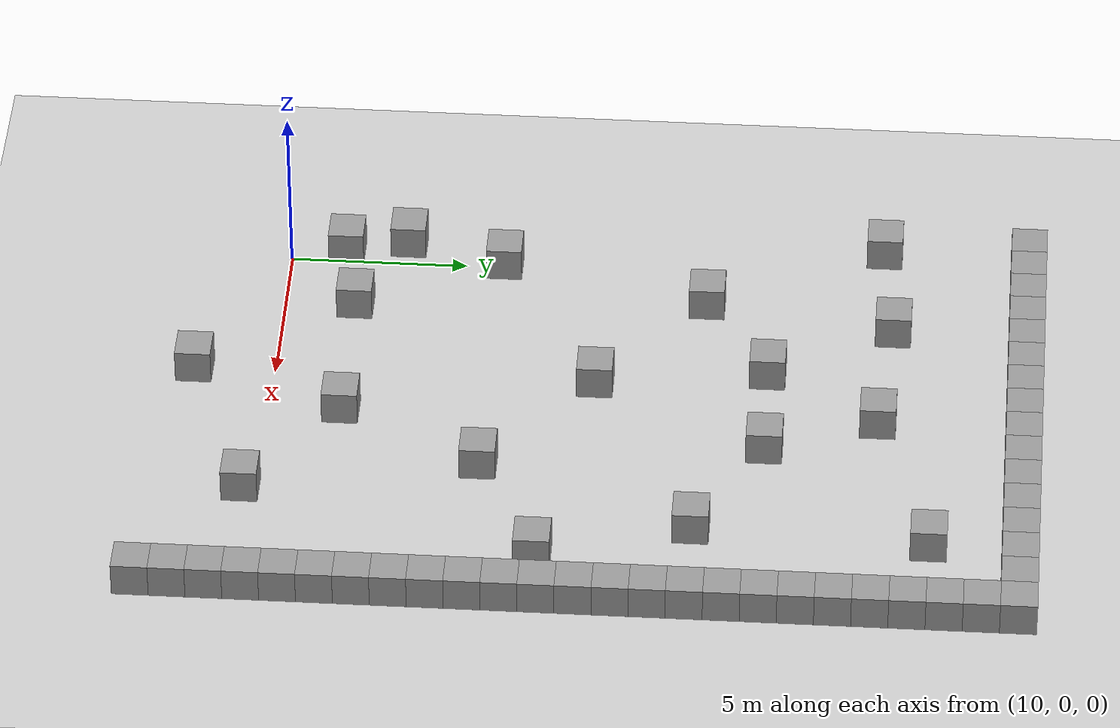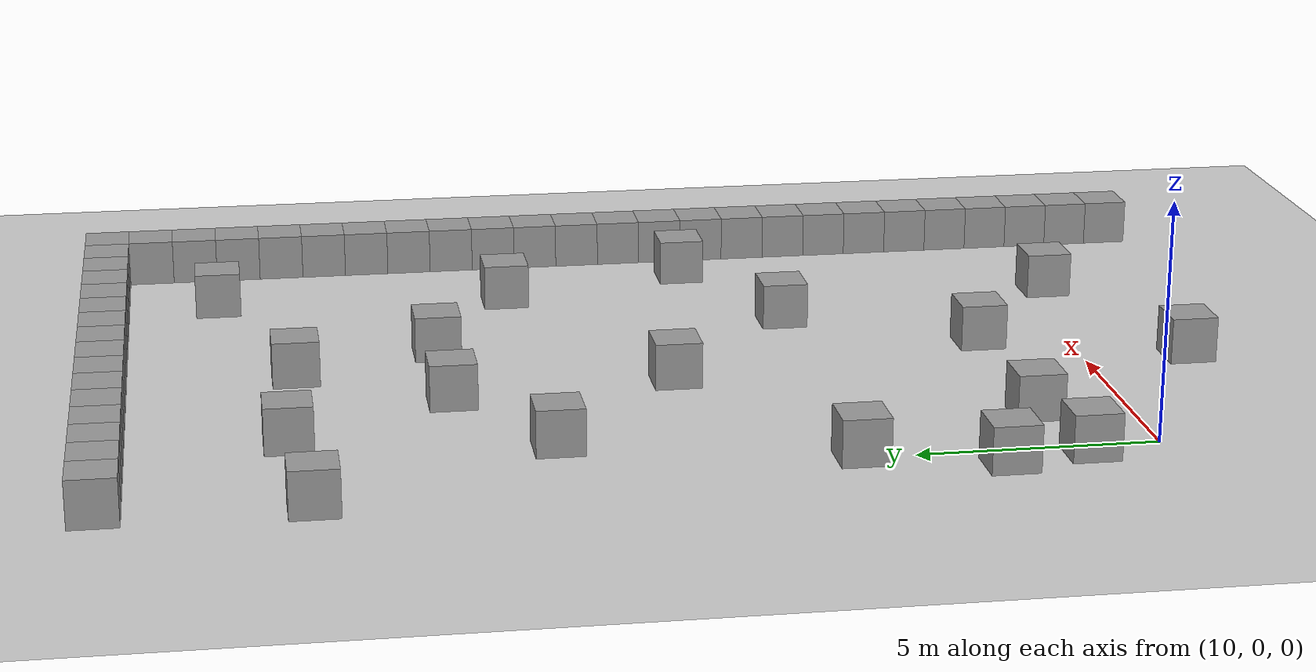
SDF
<sdf version="1.6">
 <world name="default">
  <model name="ground_plane">
   <static>1</static>
   <link name="link">
    <collision name="collision">
     <geometry><plane><normal>0 0 1</normal><size>100 100</size></plane></geometry>
     <surface><friction><ode><mu>100</mu><mu2>50</mu2></ode></friction></surface>
    </collision>
    <visual name="visual">
     <cast_shadows>0</cast_shadows>
     <geometry><plane><normal>0 0 1</normal><size>100 100</size></plane></geometry>
     <material>
      <script><uri>file://media/materials/scripts/gazebo.material</uri><name>Gazebo/Grey</name></script>
     </material>
    </visual>
    <velocity_decay><linear>0</linear><angular>0</angular></velocity_decay>
   </link>
  </model>
  <model name="unit_box_112">
   <pose>9 21 0.5 0 0 0</pose>
   <static>1</static>
   <link name="link">
    <inertial>
     <mass>1</mass>
     <inertia><ixx>1</ixx><ixy>0</ixy><ixz>0</ixz><iyy>1</iyy><iyz>0</iyz><izz>1</izz></inertia>
    </inertial>
    <collision name="collision"><geometry><box><size>1 1 1</size></box></geometry></collision>
    <visual name="visual">
     <geometry><box><size>1 1 1</size></box></geometry>
     <material>
      <script><uri>file://media/materials/scripts/gazebo.material</uri><name>Gazebo/Grey</name></script>
     </material>
    </visual>
    <velocity_decay><linear>0</linear><angular>0</angular></velocity_decay>
   </link>
   <static>1</static>
  </model>
  <model name="unit_box_113">
   <pose>10 21 0.5 0 0 0</pose>
   <static>1</static>
   <link name="link">
    <inertial>
     <mass>1</mass>
     <inertia><ixx>1</ixx><ixy>0</ixy><ixz>0</ixz><iyy>1</iyy><iyz>0</iyz><izz>1</izz></inertia>
    </inertial>
    <collision name="collision"><geometry><box><size>1 1 1</size></box></geometry></collision>
    <visual name="visual">
     <geometry><box><size>1 1 1</size></box></geometry>
     <material>
      <script><uri>file://media/materials/scripts/gazebo.material</uri><name>Gazebo/Grey</name></script>
     </material>
    </visual>
    <velocity_decay><linear>0</linear><angular>0</angular></velocity_decay>
   </link>
   <static>1</static>
  </model>
  <model name="unit_box_114">
   <pose>11 21 0.5 0 0 0</pose>
   <static>1</static>
   <link name="link">
    <inertial>
     <mass>1</mass>
     <inertia><ixx>1</ixx><ixy>0</ixy><ixz>0</ixz><iyy>1</iyy><iyz>0</iyz><izz>1</izz></inertia>
    </inertial>
    <collision name="collision"><geometry><box><size>1 1 1</size></box></geometry></collision>
    <visual name="visual">
     <geometry><box><size>1 1 1</size></box></geometry>
     <material>
      <script><uri>file://media/materials/scripts/gazebo.material</uri><name>Gazebo/Grey</name></script>
     </material>
    </visual>
    <velocity_decay><linear>0</linear><angular>0</angular></velocity_decay>
   </link>
   <static>1</static>
  </model>
  <model name="unit_box_115">
   <pose>12 21 0.5 0 0 0</pose>
   <static>1</static>
   <link name="link">
    <inertial>
     <mass>1</mass>
     <inertia><ixx>1</ixx><ixy>0</ixy><ixz>0</ixz><iyy>1</iyy><iyz>0</iyz><izz>1</izz></inertia>
    </inertial>
    <collision name="collision"><geometry><box><size>1 1 1</size></box></geometry></collision>
    <visual name="visual">
     <geometry><box><size>1 1 1</size></box></geometry>
     <material>
      <script><uri>file://media/materials/scripts/gazebo.material</uri><name>Gazebo/Grey</name></script>
     </material>
    </visual>
    <velocity_decay><linear>0</linear><angular>0</angular></velocity_decay>
   </link>
   <static>1</static>
  </model>
  <model name="unit_box_116">
   <pose>13 21 0.5 0 0 0</pose>
   <static>1</static>
   <link name="link">
    <inertial>
     <mass>1</mass>
     <inertia><ixx>1</ixx><ixy>0</ixy><ixz>0</ixz><iyy>1</iyy><iyz>0</iyz><izz>1</izz></inertia>
    </inertial>
    <collision name="collision"><geometry><box><size>1 1 1</size></box></geometry></collision>
    <visual name="visual">
     <geometry><box><size>1 1 1</size></box></geometry>
     <material>
      <script><uri>file://media/materials/scripts/gazebo.material</uri><name>Gazebo/Grey</name></script>
     </material>
    </visual>
    <velocity_decay><linear>0</linear><angular>0</angular></velocity_decay>
   </link>
   <static>1</static>
  </model>
  <model name="unit_box_121">
   <pose>14 21 0.5 0 0 0</pose>
   <static>1</static>
   <link name="link">
    <inertial>
     <mass>1</mass>
     <inertia><ixx>1</ixx><ixy>0</ixy><ixz>0</ixz><iyy>1</iyy><iyz>0</iyz><izz>1</izz></inertia>
    </inertial>
    <collision name="collision"><geometry><box><size>1 1 1</size></box></geometry></collision>
    <visual name="visual">
     <geometry><box><size>1 1 1</size></box></geometry>
     <material>
      <script><uri>file://media/materials/scripts/gazebo.material</uri><name>Gazebo/Grey</name></script>
     </material>
    </visual>
    <velocity_decay><linear>0</linear><angular>0</angular></velocity_decay>
   </link>
   <static>1</static>
  </model>
  <model name="unit_box_134">
   <pose>15 21 0.5 0 0 0</pose>
   <static>1</static>
   <link name="link">
    <inertial>
     <mass>1</mass>
     <inertia><ixx>1</ixx><ixy>0</ixy><ixz>0</ixz><iyy>1</iyy><iyz>0</iyz><izz>1</izz></inertia>
    </inertial>
    <collision name="collision"><geometry><box><size>1 1 1</size></box></geometry></collision>
    <visual name="visual">
     <geometry><box><size>1 1 1</size></box></geometry>
     <material>
      <script><uri>file://media/materials/scripts/gazebo.material</uri><name>Gazebo/Grey</name></script>
     </material>
    </visual>
    <velocity_decay><linear>0</linear><angular>0</angular></velocity_decay>
   </link>
   <static>1</static>
  </model>
  <model name="unit_box_135">
   <pose>16 21 0.5 0 0 0</pose>
   <static>1</static>
   <link name="link">
    <inertial>
     <mass>1</mass>
     <inertia><ixx>1</ixx><ixy>0</ixy><ixz>0</ixz><iyy>1</iyy><iyz>0</iyz><izz>1</izz></inertia>
    </inertial>
    <collision name="collision"><geometry><box><size>1 1 1</size></box></geometry></collision>
    <visual name="visual">
     <geometry><box><size>1 1 1</size></box></geometry>
     <material>
      <script><uri>file://media/materials/scripts/gazebo.material</uri><name>Gazebo/Grey</name></script>
     </material>
    </visual>
    <velocity_decay><linear>0</linear><angular>0</angular></velocity_decay>
   </link>
   <static>1</static>
  </model>
  <model name="unit_box_136">
   <pose>17 21 0.5 0 0 0</pose>
   <static>1</static>
   <link name="link">
    <inertial>
     <mass>1</mass>
     <inertia><ixx>1</ixx><ixy>0</ixy><ixz>0</ixz><iyy>1</iyy><iyz>0</iyz><izz>1</izz></inertia>
    </inertial>
    <collision name="collision"><geometry><box><size>1 1 1</size></box></geometry></collision>
    <visual name="visual">
     <geometry><box><size>1 1 1</size></box></geometry>
     <material>
      <script><uri>file://media/materials/scripts/gazebo.material</uri><name>Gazebo/Grey</name></script>
     </material>
    </visual>
    <velocity_decay><linear>0</linear><angular>0</angular></velocity_decay>
   </link>
   <static>1</static>
  </model>
  <model name="unit_box_137">
   <pose>18 21 0.5 0 0 0</pose>
   <static>1</static>
   <link name="link">
    <inertial>
     <mass>1</mass>
     <inertia><ixx>1</ixx><ixy>0</ixy><ixz>0</ixz><iyy>1</iyy><iyz>0</iyz><izz>1</izz></inertia>
    </inertial>
    <collision name="collision"><geometry><box><size>1 1 1</size></box></geometry></collision>
    <visual name="visual">
     <geometry><box><size>1 1 1</size></box></geometry>
     <material>
      <script><uri>file://media/materials/scripts/gazebo.material</uri><name>Gazebo/Grey</name></script>
     </material>
    </visual>
    <velocity_decay><linear>0</linear><angular>0</angular></velocity_decay>
   </link>
   <static>1</static>
  </model>
  <model name="unit_box_146">
   <pose>19 21 0.5 0 0 0</pose>
   <static>1</static>
   <link name="link">
    <inertial>
     <mass>1</mass>
     <inertia><ixx>1</ixx><ixy>0</ixy><ixz>0</ixz><iyy>1</iyy><iyz>0</iyz><izz>1</izz></inertia>
    </inertial>
    <collision name="collision"><geometry><box><size>1 1 1</size></box></geometry></collision>
    <visual name="visual">
     <geometry><box><size>1 1 1</size></box></geometry>
     <material>
      <script><uri>file://media/materials/scripts/gazebo.material</uri><name>Gazebo/Grey</name></script>
     </material>
    </visual>
    <velocity_decay><linear>0</linear><angular>0</angular></velocity_decay>
   </link>
   <static>1</static>
  </model>
  <model name="unit_box_147">
   <pose>20 21 0.5 0 0 0</pose>
   <static>1</static>
   <link name="link">
    <inertial>
     <mass>1</mass>
     <inertia><ixx>1</ixx><ixy>0</ixy><ixz>0</ixz><iyy>1</iyy><iyz>0</iyz><izz>1</izz></inertia>
    </inertial>
    <collision name="collision"><geometry><box><size>1 1 1</size></box></geometry></collision>
    <visual name="visual">
     <geometry><box><size>1 1 1</size></box></geometry>
     <material>
      <script><uri>file://media/materials/scripts/gazebo.material</uri><name>Gazebo/Grey</name></script>
     </material>
    </visual>
    <velocity_decay><linear>0</linear><angular>0</angular></velocity_decay>
   </link>
   <static>1</static>
  </model>
  <model name="unit_box_148">
   <pose>21 21 0.5 0 0 0</pose>
   <static>1</static>
   <link name="link">
    <inertial>
     <mass>1</mass>
     <inertia><ixx>1</ixx><ixy>0</ixy><ixz>0</ixz><iyy>1</iyy><iyz>0</iyz><izz>1</izz></inertia>
    </inertial>
    <collision name="collision"><geometry><box><size>1 1 1</size></box></geometry></collision>
    <visual name="visual">
     <geometry><box><size>1 1 1</size></box></geometry>
     <material>
      <script><uri>file://media/materials/scripts/gazebo.material</uri><name>Gazebo/Grey</name></script>
     </material>
    </visual>
    <velocity_decay><linear>0</linear><angular>0</angular></velocity_decay>
   </link>
   <static>1</static>
  </model>
  <model name="unit_box_150">
   <pose>22 21 0.5 0 0 0</pose>
   <static>1</static>
   <link name="link">
    <inertial>
     <mass>1</mass>
     <inertia><ixx>1</ixx><ixy>0</ixy><ixz>0</ixz><iyy>1</iyy><iyz>0</iyz><izz>1</izz></inertia>
    </inertial>
    <collision name="collision"><geometry><box><size>1 1 1</size></box></geometry></collision>
    <visual name="visual">
     <geometry><box><size>1 1 1</size></box></geometry>
     <material>
      <script><uri>file://media/materials/scripts/gazebo.material</uri><name>Gazebo/Grey</name></script>
     </material>
    </visual>
    <velocity_decay><linear>0</linear><angular>0</angular></velocity_decay>
   </link>
   <static>1</static>
  </model>
  <model name="unit_box_151">
   <pose>23 21 0.5 0 0 0</pose>
   <static>1</static>
   <link name="link">
    <inertial>
     <mass>1</mass>
     <inertia><ixx>1</ixx><ixy>0</ixy><ixz>0</ixz><iyy>1</iyy><iyz>0</iyz><izz>1</izz></inertia>
    </inertial>
    <collision name="collision"><geometry><box><size>1 1 1</size></box></geometry></collision>
    <visual name="visual">
     <geometry><box><size>1 1 1</size></box></geometry>
     <material>
      <script><uri>file://media/materials/scripts/gazebo.material</uri><name>Gazebo/Grey</name></script>
     </material>
    </visual>
    <velocity_decay><linear>0</linear><angular>0</angular></velocity_decay>
   </link>
   <static>1</static>
  </model>
  <model name="unit_box_152">
   <pose>24 21 0.5 0 0 0</pose>
   <static>1</static>
   <link name="link">
    <inertial>
     <mass>1</mass>
     <inertia><ixx>1</ixx><ixy>0</ixy><ixz>0</ixz><iyy>1</iyy><iyz>0</iyz><izz>1</izz></inertia>
    </inertial>
    <collision name="collision"><geometry><box><size>1 1 1</size></box></geometry></collision>
    <visual name="visual">
     <geometry><box><size>1 1 1</size></box></geometry>
     <material>
      <script><uri>file://media/materials/scripts/gazebo.material</uri><name>Gazebo/Grey</name></script>
     </material>
    </visual>
    <velocity_decay><linear>0</linear><angular>0</angular></velocity_decay>
   </link>
   <static>1</static>
  </model>
  <model name="unit_box_153">
   <pose>24 20 0.5 0 0 0</pose>
   <static>1</static>
   <link name="link">
    <inertial>
     <mass>1</mass>
     <inertia><ixx>1</ixx><ixy>0</ixy><ixz>0</ixz><iyy>1</iyy><iyz>0</iyz><izz>1</izz></inertia>
    </inertial>
    <collision name="collision"><geometry><box><size>1 1 1</size></box></geometry></collision>
    <visual name="visual">
     <geometry><box><size>1 1 1</size></box></geometry>
     <material>
      <script><uri>file://media/materials/scripts/gazebo.material</uri><name>Gazebo/Grey</name></script>
     </material>
    </visual>
    <velocity_decay><linear>0</linear><angular>0</angular></velocity_decay>
   </link>
   <static>1</static>
  </model>
  <model name="unit_box_154">
   <pose>24 19 0.5 0 0 0</pose>
   <static>1</static>
   <link name="link">
    <inertial>
     <mass>1</mass>
     <inertia><ixx>1</ixx><ixy>0</ixy><ixz>0</ixz><iyy>1</iyy><iyz>0</iyz><izz>1</izz></inertia>
    </inertial>
    <collision name="collision"><geometry><box><size>1 1 1</size></box></geometry></collision>
    <visual name="visual">
     <geometry><box><size>1 1 1</size></box></geometry>
     <material>
      <script><uri>file://media/materials/scripts/gazebo.material</uri><name>Gazebo/Grey</name></script>
     </material>
    </visual>
    <velocity_decay><linear>0</linear><angular>0</angular></velocity_decay>
   </link>
   <static>1</static>
  </model>
  <model name="unit_box_155">
   <pose>24 18 0.5 0 0 0</pose>
   <static>1</static>
   <link name="link">
    <inertial>
     <mass>1</mass>
     <inertia><ixx>1</ixx><ixy>0</ixy><ixz>0</ixz><iyy>1</iyy><iyz>0</iyz><izz>1</izz></inertia>
    </inertial>
    <collision name="collision"><geometry><box><size>1 1 1</size></box></geometry></collision>
    <visual name="visual">
     <geometry><box><size>1 1 1</size></box></geometry>
     <material>
      <script><uri>file://media/materials/scripts/gazebo.material</uri><name>Gazebo/Grey</name></script>
     </material>
    </visual>
    <velocity_decay><linear>0</linear><angular>0</angular></velocity_decay>
   </link>
   <static>1</static>
  </model>
  <model name="unit_box_156">
   <pose>24 17 0.5 0 0 0</pose>
   <static>1</static>
   <link name="link">
    <inertial>
     <mass>1</mass>
     <inertia><ixx>1</ixx><ixy>0</ixy><ixz>0</ixz><iyy>1</iyy><iyz>0</iyz><izz>1</izz></inertia>
    </inertial>
    <collision name="collision"><geometry><box><size>1 1 1</size></box></geometry></collision>
    <visual name="visual">
     <geometry><box><size>1 1 1</size></box></geometry>
     <material>
      <script><uri>file://media/materials/scripts/gazebo.material</uri><name>Gazebo/Grey</name></script>
     </material>
    </visual>
    <velocity_decay><linear>0</linear><angular>0</angular></velocity_decay>
   </link>
   <static>1</static>
  </model>
  <model name="unit_box_157">
   <pose>24 16 0.5 0 0 0</pose>
   <static>1</static>
   <link name="link">
    <inertial>
     <mass>1</mass>
     <inertia><ixx>1</ixx><ixy>0</ixy><ixz>0</ixz><iyy>1</iyy><iyz>0</iyz><izz>1</izz></inertia>
    </inertial>
    <collision name="collision"><geometry><box><size>1 1 1</size></box></geometry></collision>
    <visual name="visual">
     <geometry><box><size>1 1 1</size></box></geometry>
     <material>
      <script><uri>file://media/materials/scripts/gazebo.material</uri><name>Gazebo/Grey</name></script>
     </material>
    </visual>
    <velocity_decay><linear>0</linear><angular>0</angular></velocity_decay>
   </link>
   <static>1</static>
  </model>
  <model name="unit_box_158">
   <pose>24 15 0.5 0 0 0</pose>
   <static>1</static>
   <link name="link">
    <inertial>
     <mass>1</mass>
     <inertia><ixx>1</ixx><ixy>0</ixy><ixz>0</ixz><iyy>1</iyy><iyz>0</iyz><izz>1</izz></inertia>
    </inertial>
    <collision name="collision"><geometry><box><size>1 1 1</size></box></geometry></collision>
    <visual name="visual">
     <geometry><box><size>1 1 1</size></box></geometry>
     <material>
      <script><uri>file://media/materials/scripts/gazebo.material</uri><name>Gazebo/Grey</name></script>
     </material>
    </visual>
    <velocity_decay><linear>0</linear><angular>0</angular></velocity_decay>
   </link>
   <static>1</static>
  </model>
  <model name="unit_box_159">
   <pose>24 14 0.5 0 0 0</pose>
   <static>1</static>
   <link name="link">
    <inertial>
     <mass>1</mass>
     <inertia><ixx>1</ixx><ixy>0</ixy><ixz>0</ixz><iyy>1</iyy><iyz>0</iyz><izz>1</izz></inertia>
    </inertial>
    <collision name="collision"><geometry><box><size>1 1 1</size></box></geometry></collision>
    <visual name="visual">
     <geometry><box><size>1 1 1</size></box></geometry>
     <material>
      <script><uri>file://media/materials/scripts/gazebo.material</uri><name>Gazebo/Grey</name></script>
     </material>
    </visual>
    <velocity_decay><linear>0</linear><angular>0</angular></velocity_decay>
   </link>
   <static>1</static>
  </model>
  <model name="unit_box_160">
   <pose>24 13 0.5 0 0 0</pose>
   <static>1</static>
   <link name="link">
    <inertial>
     <mass>1</mass>
     <inertia><ixx>1</ixx><ixy>0</ixy><ixz>0</ixz><iyy>1</iyy><iyz>0</iyz><izz>1</izz></inertia>
    </inertial>
    <collision name="collision"><geometry><box><size>1 1 1</size></box></geometry></collision>
    <visual name="visual">
     <geometry><box><size>1 1 1</size></box></geometry>
     <material>
      <script><uri>file://media/materials/scripts/gazebo.material</uri><name>Gazebo/Grey</name></script>
     </material>
    </visual>
    <velocity_decay><linear>0</linear><angular>0</angular></velocity_decay>
   </link>
   <static>1</static>
  </model>
  <model name="unit_box_161">
   <pose>24 12 0.5 0 0 0</pose>
   <static>1</static>
   <link name="link">
    <inertial>
     <mass>1</mass>
     <inertia><ixx>1</ixx><ixy>0</ixy><ixz>0</ixz><iyy>1</iyy><iyz>0</iyz><izz>1</izz></inertia>
    </inertial>
    <collision name="collision"><geometry><box><size>1 1 1</size></box></geometry></collision>
    <visual name="visual">
     <geometry><box><size>1 1 1</size></box></geometry>
     <material>
      <script><uri>file://media/materials/scripts/gazebo.material</uri><name>Gazebo/Grey</name></script>
     </material>
    </visual>
    <velocity_decay><linear>0</linear><angular>0</angular></velocity_decay>
   </link>
   <static>1</static>
  </model>
  <model name="unit_box_162">
   <pose>24 11 0.5 0 0 0</pose>
   <static>1</static>
   <link name="link">
    <inertial>
     <mass>1</mass>
     <inertia><ixx>1</ixx><ixy>0</ixy><ixz>0</ixz><iyy>1</iyy><iyz>0</iyz><izz>1</izz></inertia>
    </inertial>
    <collision name="collision"><geometry><box><size>1 1 1</size></box></geometry></collision>
    <visual name="visual">
     <geometry><box><size>1 1 1</size></box></geometry>
     <material>
      <script><uri>file://media/materials/scripts/gazebo.material</uri><name>Gazebo/Grey</name></script>
     </material>
    </visual>
    <velocity_decay><linear>0</linear><angular>0</angular></velocity_decay>
   </link>
   <static>1</static>
  </model>
  <model name="unit_box_182">
   <pose>24 -1 0.5 0 0 0</pose>
   <static>1</static>
   <link name="link">
    <inertial>
     <mass>1</mass>
     <inertia><ixx>1</ixx><ixy>0</ixy><ixz>0</ixz><iyy>1</iyy><iyz>0</iyz><izz>1</izz></inertia>
    </inertial>
    <collision name="collision"><geometry><box><size>1 1 1</size></box></geometry></collision>
    <visual name="visual">
     <geometry><box><size>1 1 1</size></box></geometry>
     <material>
      <script><uri>file://media/materials/scripts/gazebo.material</uri><name>Gazebo/Grey</name></script>
     </material>
    </visual>
    <velocity_decay><linear>0</linear><angular>0</angular></velocity_decay>
   </link>
   <static>1</static>
  </model>
  <model name="unit_box_188">
   <pose>24 10 0.5 0 0 0</pose>
   <static>1</static>
   <link name="link">
    <inertial>
     <mass>1</mass>
     <inertia><ixx>1</ixx><ixy>0</ixy><ixz>0</ixz><iyy>1</iyy><iyz>0</iyz><izz>1</izz></inertia>
    </inertial>
    <collision name="collision"><geometry><box><size>1 1 1</size></box></geometry></collision>
    <visual name="visual">
     <geometry><box><size>1 1 1</size></box></geometry>
     <material>
      <script><uri>file://media/materials/scripts/gazebo.material</uri><name>Gazebo/Grey</name></script>
     </material>
    </visual>
    <velocity_decay><linear>0</linear><angular>0</angular></velocity_decay>
   </link>
   <static>1</static>
  </model>
  <model name="unit_box_189">
   <pose>24 9 0.5 0 0 0</pose>
   <static>1</static>
   <link name="link">
    <inertial>
     <mass>1</mass>
     <inertia><ixx>1</ixx><ixy>0</ixy><ixz>0</ixz><iyy>1</iyy><iyz>0</iyz><izz>1</izz></inertia>
    </inertial>
    <collision name="collision"><geometry><box><size>1 1 1</size></box></geometry></collision>
    <visual name="visual">
     <geometry><box><size>1 1 1</size></box></geometry>
     <material>
      <script><uri>file://media/materials/scripts/gazebo.material</uri><name>Gazebo/Grey</name></script>
     </material>
    </visual>
    <velocity_decay><linear>0</linear><angular>0</angular></velocity_decay>
   </link>
   <static>1</static>
  </model>
  <model name="unit_box_190">
   <pose>24 8 0.5 0 0 0</pose>
   <static>1</static>
   <link name="link">
    <inertial>
     <mass>1</mass>
     <inertia><ixx>1</ixx><ixy>0</ixy><ixz>0</ixz><iyy>1</iyy><iyz>0</iyz><izz>1</izz></inertia>
    </inertial>
    <collision name="collision"><geometry><box><size>1 1 1</size></box></geometry></collision>
    <visual name="visual">
     <geometry><box><size>1 1 1</size></box></geometry>
     <material>
      <script><uri>file://media/materials/scripts/gazebo.material</uri><name>Gazebo/Grey</name></script>
     </material>
    </visual>
    <velocity_decay><linear>0</linear><angular>0</angular></velocity_decay>
   </link>
   <static>1</static>
  </model>
  <model name="unit_box_191">
   <pose>24 7 0.5 0 0 0</pose>
   <static>1</static>
   <link name="link">
    <inertial>
     <mass>1</mass>
     <inertia><ixx>1</ixx><ixy>0</ixy><ixz>0</ixz><iyy>1</iyy><iyz>0</iyz><izz>1</izz></inertia>
    </inertial>
    <collision name="collision"><geometry><box><size>1 1 1</size></box></geometry></collision>
    <visual name="visual">
     <geometry><box><size>1 1 1</size></box></geometry>
     <material>
      <script><uri>file://media/materials/scripts/gazebo.material</uri><name>Gazebo/Grey</name></script>
     </material>
    </visual>
    <velocity_decay><linear>0</linear><angular>0</angular></velocity_decay>
   </link>
   <static>1</static>
  </model>
  <model name="unit_box_192">
   <pose>24 6 0.5 0 0 0</pose>
   <static>1</static>
   <link name="link">
    <inertial>
     <mass>1</mass>
     <inertia><ixx>1</ixx><ixy>0</ixy><ixz>0</ixz><iyy>1</iyy><iyz>0</iyz><izz>1</izz></inertia>
    </inertial>
    <collision name="collision"><geometry><box><size>1 1 1</size></box></geometry></collision>
    <visual name="visual">
     <geometry><box><size>1 1 1</size></box></geometry>
     <material>
      <script><uri>file://media/materials/scripts/gazebo.material</uri><name>Gazebo/Grey</name></script>
     </material>
    </visual>
    <velocity_decay><linear>0</linear><angular>0</angular></velocity_decay>
   </link>
   <static>1</static>
  </model>
  <model name="unit_box_194">
   <pose>24 5 0.5 0 0 0</pose>
   <static>1</static>
   <link name="link">
    <inertial>
     <mass>1</mass>
     <inertia><ixx>1</ixx><ixy>0</ixy><ixz>0</ixz><iyy>1</iyy><iyz>0</iyz><izz>1</izz></inertia>
    </inertial>
    <collision name="collision"><geometry><box><size>1 1 1</size></box></geometry></collision>
    <visual name="visual">
     <geometry><box><size>1 1 1</size></box></geometry>
     <material>
      <script><uri>file://media/materials/scripts/gazebo.material</uri><name>Gazebo/Grey</name></script>
     </material>
    </visual>
    <velocity_decay><linear>0</linear><angular>0</angular></velocity_decay>
   </link>
   <static>1</static>
  </model>
  <model name="unit_box_195">
   <pose>24 4 0.5 0 0 0</pose>
   <static>1</static>
   <link name="link">
    <inertial>
     <mass>1</mass>
     <inertia><ixx>1</ixx><ixy>0</ixy><ixz>0</ixz><iyy>1</iyy><iyz>0</iyz><izz>1</izz></inertia>
    </inertial>
    <collision name="collision"><geometry><box><size>1 1 1</size></box></geometry></collision>
    <visual name="visual">
     <geometry><box><size>1 1 1</size></box></geometry>
     <material>
      <script><uri>file://media/materials/scripts/gazebo.material</uri><name>Gazebo/Grey</name></script>
     </material>
    </visual>
    <velocity_decay><linear>0</linear><angular>0</angular></velocity_decay>
   </link>
   <static>1</static>
  </model>
  <model name="unit_box_196">
   <pose>24 3 0.5 0 0 0</pose>
   <static>1</static>
   <link name="link">
    <inertial>
     <mass>1</mass>
     <inertia><ixx>1</ixx><ixy>0</ixy><ixz>0</ixz><iyy>1</iyy><iyz>0</iyz><izz>1</izz></inertia>
    </inertial>
    <collision name="collision"><geometry><box><size>1 1 1</size></box></geometry></collision>
    <visual name="visual">
     <geometry><box><size>1 1 1</size></box></geometry>
     <material>
      <script><uri>file://media/materials/scripts/gazebo.material</uri><name>Gazebo/Grey</name></script>
     </material>
    </visual>
    <velocity_decay><linear>0</linear><angular>0</angular></velocity_decay>
   </link>
   <static>1</static>
  </model>
  <model name="unit_box_197">
   <pose>24 2 0.5 0 0 0</pose>
   <static>1</static>
   <link name="link">
    <inertial>
     <mass>1</mass>
     <inertia><ixx>1</ixx><ixy>0</ixy><ixz>0</ixz><iyy>1</iyy><iyz>0</iyz><izz>1</izz></inertia>
    </inertial>
    <collision name="collision"><geometry><box><size>1 1 1</size></box></geometry></collision>
    <visual name="visual">
     <geometry><box><size>1 1 1</size></box></geometry>
     <material>
      <script><uri>file://media/materials/scripts/gazebo.material</uri><name>Gazebo/Grey</name></script>
     </material>
    </visual>
    <velocity_decay><linear>0</linear><angular>0</angular></velocity_decay>
   </link>
   <static>1</static>
  </model>
  <model name="unit_box_198">
   <pose>24 1 0.5 0 0 0</pose>
   <static>1</static>
   <link name="link">
    <inertial>
     <mass>1</mass>
     <inertia><ixx>1</ixx><ixy>0</ixy><ixz>0</ixz><iyy>1</iyy><iyz>0</iyz><izz>1</izz></inertia>
    </inertial>
    <collision name="collision"><geometry><box><size>1 1 1</size></box></geometry></collision>
    <visual name="visual">
     <geometry><box><size>1 1 1</size></box></geometry>
     <material>
      <script><uri>file://media/materials/scripts/gazebo.material</uri><name>Gazebo/Grey</name></script>
     </material>
    </visual>
    <velocity_decay><linear>0</linear><angular>0</angular></velocity_decay>
   </link>
   <static>1</static>
  </model>
  <model name="unit_box_199">
   <pose>24 0 0.5 0 0 0</pose>
   <static>1</static>
   <link name="link">
    <inertial>
     <mass>1</mass>
     <inertia><ixx>1</ixx><ixy>0</ixy><ixz>0</ixz><iyy>1</iyy><iyz>0</iyz><izz>1</izz></inertia>
    </inertial>
    <collision name="collision"><geometry><box><size>1 1 1</size></box></geometry></collision>
    <visual name="visual">
     <geometry><box><size>1 1 1</size></box></geometry>
     <material>
      <script><uri>file://media/materials/scripts/gazebo.material</uri><name>Gazebo/Grey</name></script>
     </material>
    </visual>
    <velocity_decay><linear>0</linear><angular>0</angular></velocity_decay>
   </link>
   <static>1</static>
  </model>
  <model name="unit_box_204">
   <pose>24 -2 0.5 0 0 0</pose>
   <static>1</static>
   <link name="link">
    <inertial>
     <mass>1</mass>
     <inertia><ixx>1</ixx><ixy>0</ixy><ixz>0</ixz><iyy>1</iyy><iyz>0</iyz><izz>1</izz></inertia>
    </inertial>
    <collision name="collision"><geometry><box><size>1 1 1</size></box></geometry></collision>
    <visual name="visual">
     <geometry><box><size>1 1 1</size></box></geometry>
     <material>
      <script><uri>file://media/materials/scripts/gazebo.material</uri><name>Gazebo/Grey</name></script>
     </material>
    </visual>
    <velocity_decay><linear>0</linear><angular>0</angular></velocity_decay>
   </link>
   <static>1</static>
  </model>
  <model name="unit_box_205">
   <pose>24 -3 0.5 0 0 0</pose>
   <static>1</static>
   <link name="link">
    <inertial>
     <mass>1</mass>
     <inertia><ixx>1</ixx><ixy>0</ixy><ixz>0</ixz><iyy>1</iyy><iyz>0</iyz><izz>1</izz></inertia>
    </inertial>
    <collision name="collision"><geometry><box><size>1 1 1</size></box></geometry></collision>
    <visual name="visual">
     <geometry><box><size>1 1 1</size></box></geometry>
     <material>
      <script><uri>file://media/materials/scripts/gazebo.material</uri><name>Gazebo/Grey</name></script>
     </material>
    </visual>
    <velocity_decay><linear>0</linear><angular>0</angular></velocity_decay>
   </link>
   <static>1</static>
  </model>
  <model name="unit_box_4_0_clone_11">
   <pose>8.85 16.9 0.5 0 0 0</pose>
   <link name="link">
    <inertial>
     <mass>1</mass>
     <inertia><ixx>1</ixx><ixy>0</ixy><ixz>0</ixz><iyy>1</iyy><iyz>0</iyz><izz>1</izz></inertia>
    </inertial>
    <collision name="collision"><geometry><box><size>1 1 1</size></box></geometry></collision>
    <visual name="visual">
     <geometry><box><size>1 1 1</size></box></geometry>
     <material>
      <script><uri>file://media/materials/scripts/gazebo.material</uri><name>Gazebo/Grey</name></script>
     </material>
    </visual>
    <velocity_decay><linear>0</linear><angular>0</angular></velocity_decay>
   </link>
   <static>1</static>
  </model>
  <model name="unit_box_4_0_clone_12">
   <pose>12.3 17.25 0.5 0 0 0</pose>
   <link name="link">
    <inertial>
     <mass>1</mass>
     <inertia><ixx>1</ixx><ixy>0</ixy><ixz>0</ixz><iyy>1</iyy><iyz>0</iyz><izz>1</izz></inertia>
    </inertial>
    <collision name="collision"><geometry><box><size>1 1 1</size></box></geometry></collision>
    <visual name="visual">
     <geometry><box><size>1 1 1</size></box></geometry>
     <material>
      <script><uri>file://media/materials/scripts/gazebo.material</uri><name>Gazebo/Grey</name></script>
     </material>
    </visual>
    <velocity_decay><linear>0</linear><angular>0</angular></velocity_decay>
   </link>
   <static>1</static>
  </model>
  <model name="unit_box_4_0_clone_13">
   <pose>16.25 16.95 0.5 0 0 0</pose>
   <link name="link">
    <inertial>
     <mass>1</mass>
     <inertia><ixx>1</ixx><ixy>0</ixy><ixz>0</ixz><iyy>1</iyy><iyz>0</iyz><izz>1</izz></inertia>
    </inertial>
    <collision name="collision"><geometry><box><size>1 1 1</size></box></geometry></collision>
    <visual name="visual">
     <geometry><box><size>1 1 1</size></box></geometry>
     <material>
      <script><uri>file://media/materials/scripts/gazebo.material</uri><name>Gazebo/Grey</name></script>
     </material>
    </visual>
    <velocity_decay><linear>0</linear><angular>0</angular></velocity_decay>
   </link>
   <static>1</static>
  </model>
  <model name="unit_box_4_0_clone_14">
   <pose>17.5 13.85 0.5 0 0 0</pose>
   <link name="link">
    <inertial>
     <mass>1</mass>
     <inertia><ixx>1</ixx><ixy>0</ixy><ixz>0</ixz><iyy>1</iyy><iyz>0</iyz><izz>1</izz></inertia>
    </inertial>
    <collision name="collision"><geometry><box><size>1 1 1</size></box></geometry></collision>
    <visual name="visual">
     <geometry><box><size>1 1 1</size></box></geometry>
     <material>
      <script><uri>file://media/materials/scripts/gazebo.material</uri><name>Gazebo/Grey</name></script>
     </material>
    </visual>
    <velocity_decay><linear>0</linear><angular>0</angular></velocity_decay>
   </link>
   <static>1</static>
  </model>
  <model name="unit_box_4_0_clone_15">
   <pose>21.25 18.5 0.5 0 0 0</pose>
   <link name="link">
    <inertial>
     <mass>1</mass>
     <inertia><ixx>1</ixx><ixy>0</ixy><ixz>0</ixz><iyy>1</iyy><iyz>0</iyz><izz>1</izz></inertia>
    </inertial>
    <collision name="collision"><geometry><box><size>1 1 1</size></box></geometry></collision>
    <visual name="visual">
     <geometry><box><size>1 1 1</size></box></geometry>
     <material>
      <script><uri>file://media/materials/scripts/gazebo.material</uri><name>Gazebo/Grey</name></script>
     </material>
    </visual>
    <velocity_decay><linear>0</linear><angular>0</angular></velocity_decay>
   </link>
   <static>1</static>
  </model>
  <model name="unit_box_4_0_clone_16">
   <pose>20.95 12 0.5 0 0 0</pose>
   <link name="link">
    <inertial>
     <mass>1</mass>
     <inertia><ixx>1</ixx><ixy>0</ixy><ixz>0</ixz><iyy>1</iyy><iyz>0</iyz><izz>1</izz></inertia>
    </inertial>
    <collision name="collision"><geometry><box><size>1 1 1</size></box></geometry></collision>
    <visual name="visual">
     <geometry><box><size>1 1 1</size></box></geometry>
     <material>
      <script><uri>file://media/materials/scripts/gazebo.material</uri><name>Gazebo/Grey</name></script>
     </material>
    </visual>
    <velocity_decay><linear>0</linear><angular>0</angular></velocity_decay>
   </link>
   <static>1</static>
  </model>
  <model name="unit_box_4_0_clone_17">
   <pose>22.25 7.75 0.5 0 0 0</pose>
   <link name="link">
    <inertial>
     <mass>1</mass>
     <inertia><ixx>1</ixx><ixy>0</ixy><ixz>0</ixz><iyy>1</iyy><iyz>0</iyz><izz>1</izz></inertia>
    </inertial>
    <collision name="collision"><geometry><box><size>1 1 1</size></box></geometry></collision>
    <visual name="visual">
     <geometry><box><size>1 1 1</size></box></geometry>
     <material>
      <script><uri>file://media/materials/scripts/gazebo.material</uri><name>Gazebo/Grey</name></script>
     </material>
    </visual>
    <velocity_decay><linear>0</linear><angular>0</angular></velocity_decay>
   </link>
   <static>1</static>
  </model>
  <model name="unit_box_4_0_clone_18">
   <pose>18.65 6 0.5 0 0 0</pose>
   <link name="link">
    <inertial>
     <mass>1</mass>
     <inertia><ixx>1</ixx><ixy>0</ixy><ixz>0</ixz><iyy>1</iyy><iyz>0</iyz><izz>1</izz></inertia>
    </inertial>
    <collision name="collision"><geometry><box><size>1 1 1</size></box></geometry></collision>
    <visual name="visual">
     <geometry><box><size>1 1 1</size></box></geometry>
     <material>
      <script><uri>file://media/materials/scripts/gazebo.material</uri><name>Gazebo/Grey</name></script>
     </material>
    </visual>
    <velocity_decay><linear>0</linear><angular>0</angular></velocity_decay>
   </link>
   <static>1</static>
  </model>
  <model name="unit_box_4_0_clone_18_clone">
   <pose>15 9 0.5 0 0 0</pose>
   <link name="link">
    <inertial>
     <mass>1</mass>
     <inertia><ixx>1</ixx><ixy>0</ixy><ixz>0</ixz><iyy>1</iyy><iyz>0</iyz><izz>1</izz></inertia>
    </inertial>
    <collision name="collision"><geometry><box><size>1 1 1</size></box></geometry></collision>
    <visual name="visual">
     <geometry><box><size>1 1 1</size></box></geometry>
     <material>
      <script><uri>file://media/materials/scripts/gazebo.material</uri><name>Gazebo/Grey</name></script>
     </material>
    </visual>
    <velocity_decay><linear>0</linear><angular>0</angular></velocity_decay>
   </link>
   <static>1</static>
  </model>
  <model name="unit_box_4_0_clone_18_clone_0">
   <pose>11.4 11.95 0.5 0 0 0</pose>
   <link name="link">
    <inertial>
     <mass>1</mass>
     <inertia><ixx>1</ixx><ixy>0</ixy><ixz>0</ixz><iyy>1</iyy><iyz>0</iyz><izz>1</izz></inertia>
    </inertial>
    <collision name="collision"><geometry><box><size>1 1 1</size></box></geometry></collision>
    <visual name="visual">
     <geometry><box><size>1 1 1</size></box></geometry>
     <material>
      <script><uri>file://media/materials/scripts/gazebo.material</uri><name>Gazebo/Grey</name></script>
     </material>
    </visual>
    <velocity_decay><linear>0</linear><angular>0</angular></velocity_decay>
   </link>
   <static>1</static>
  </model>
  <model name="unit_box_4_0_clone_18_clone_1">
   <pose>10 6.1 0.5 0 0 0</pose>
   <link name="link">
    <inertial>
     <mass>1</mass>
     <inertia><ixx>1</ixx><ixy>0</ixy><ixz>0</ixz><iyy>1</iyy><iyz>0</iyz><izz>1</izz></inertia>
    </inertial>
    <collision name="collision"><geometry><box><size>1 1 1</size></box></geometry></collision>
    <visual name="visual">
     <geometry><box><size>1 1 1</size></box></geometry>
     <material>
      <script><uri>file://media/materials/scripts/gazebo.material</uri><name>Gazebo/Grey</name></script>
     </material>
    </visual>
    <velocity_decay><linear>0</linear><angular>0</angular></velocity_decay>
   </link>
   <static>1</static>
  </model>
  <model name="unit_box_4_0_clone_18_clone_9">
   <pose>16.55 2 0.5 0 0 0</pose>
   <link name="link">
    <inertial>
     <mass>1</mass>
     <inertia><ixx>1</ixx><ixy>0</ixy><ixz>0</ixz><iyy>1</iyy><iyz>0</iyz><izz>1</izz></inertia>
    </inertial>
    <collision name="collision"><geometry><box><size>1 1 1</size></box></geometry></collision>
    <visual name="visual">
     <geometry><box><size>1 1 1</size></box></geometry>
     <material>
      <script><uri>file://media/materials/scripts/gazebo.material</uri><name>Gazebo/Grey</name></script>
     </material>
    </visual>
    <velocity_decay><linear>0</linear><angular>0</angular></velocity_decay>
   </link>
   <static>1</static>
  </model>
  <model name="unit_box_4_0_clone_18_clone_10">
   <pose>12 2 0.5 0 0 0</pose>
   <link name="link">
    <inertial>
     <mass>1</mass>
     <inertia><ixx>1</ixx><ixy>0</ixy><ixz>0</ixz><iyy>1</iyy><iyz>0</iyz><izz>1</izz></inertia>
    </inertial>
    <collision name="collision"><geometry><box><size>1 1 1</size></box></geometry></collision>
    <visual name="visual">
     <geometry><box><size>1 1 1</size></box></geometry>
     <material>
      <script><uri>file://media/materials/scripts/gazebo.material</uri><name>Gazebo/Grey</name></script>
     </material>
    </visual>
    <velocity_decay><linear>0</linear><angular>0</angular></velocity_decay>
   </link>
   <static>1</static>
  </model>
  <model name="unit_box_4_0_clone_18_clone_11">
   <pose>20 -0.45 0.5 0 0 0</pose>
   <link name="link">
    <inertial>
     <mass>1</mass>
     <inertia><ixx>1</ixx><ixy>0</ixy><ixz>0</ixz><iyy>1</iyy><iyz>0</iyz><izz>1</izz></inertia>
    </inertial>
    <collision name="collision"><geometry><box><size>1 1 1</size></box></geometry></collision>
    <visual name="visual">
     <geometry><box><size>1 1 1</size></box></geometry>
     <material>
      <script><uri>file://media/materials/scripts/gazebo.material</uri><name>Gazebo/Grey</name></script>
     </material>
    </visual>
    <velocity_decay><linear>0</linear><angular>0</angular></velocity_decay>
   </link>
   <static>1</static>
  </model>
  <model name="unit_box_4_0_clone_18_clone_16">
   <pose>14.35 13.8 0.5 0 0 0</pose>
   <link name="link">
    <inertial>
     <mass>1</mass>
     <inertia><ixx>1</ixx><ixy>0</ixy><ixz>0</ixz><iyy>1</iyy><iyz>0</iyz><izz>1</izz></inertia>
    </inertial>
    <collision name="collision"><geometry><box><size>1 1 1</size></box></geometry></collision>
    <visual name="visual">
     <geometry><box><size>1 1 1</size></box></geometry>
     <material>
      <script><uri>file://media/materials/scripts/gazebo.material</uri><name>Gazebo/Grey</name></script>
     </material>
    </visual>
    <velocity_decay><linear>0</linear><angular>0</angular></velocity_decay>
   </link>
   <static>1</static>
  </model>
  <model name="unit_box_4_0_clone_18_clone_20">
   <pose>9.6 1.55 0.5 0 0 0</pose>
   <link name="link">
    <inertial>
     <mass>1</mass>
     <inertia><ixx>1</ixx><ixy>0</ixy><ixz>0</ixz><iyy>1</iyy><iyz>0</iyz><izz>1</izz></inertia>
    </inertial>
    <collision name="collision"><geometry><box><size>1 1 1</size></box></geometry></collision>
    <visual name="visual">
     <geometry><box><size>1 1 1</size></box></geometry>
     <material>
      <script><uri>file://media/materials/scripts/gazebo.material</uri><name>Gazebo/Grey</name></script>
     </material>
    </visual>
    <velocity_decay><linear>0</linear><angular>0</angular></velocity_decay>
   </link>
   <static>1</static>
  </model>
  <model name="unit_box_4_0_clone_18_clone_22">
   <pose>9.2 3.3 0.5 0 0 0</pose>
   <link name="link">
    <inertial>
     <mass>1</mass>
     <inertia><ixx>1</ixx><ixy>0</ixy><ixz>0</ixz><iyy>1</iyy><iyz>0</iyz><izz>1</izz></inertia>
    </inertial>
    <collision name="collision"><geometry><box><size>1 1 1</size></box></geometry></collision>
    <visual name="visual">
     <geometry><box><size>1 1 1</size></box></geometry>
     <material>
      <script><uri>file://media/materials/scripts/gazebo.material</uri><name>Gazebo/Grey</name></script>
     </material>
    </visual>
    <velocity_decay><linear>0</linear><angular>0</angular></velocity_decay>
   </link>
   <static>1</static>
  </model>
  <model name="unit_box_4_0_clone_18_clone_27">
   <pose>15.05 -2.25 0.5 0 0 0</pose>
   <link name="link">
    <inertial>
     <mass>1</mass>
     <inertia><ixx>1</ixx><ixy>0</ixy><ixz>0</ixz><iyy>1</iyy><iyz>0</iyz><izz>1</izz></inertia>
    </inertial>
    <collision name="collision"><geometry><box><size>1 1 1</size></box></geometry></collision>
    <visual name="visual">
     <geometry><box><size>1 1 1</size></box></geometry>
     <material>
      <script><uri>file://media/materials/scripts/gazebo.material</uri><name>Gazebo/Grey</name></script>
     </material>
    </visual>
    <velocity_decay><linear>0</linear><angular>0</angular></velocity_decay>
   </link>
   <static>1</static>
  </model>
 </world>
</sdf>
